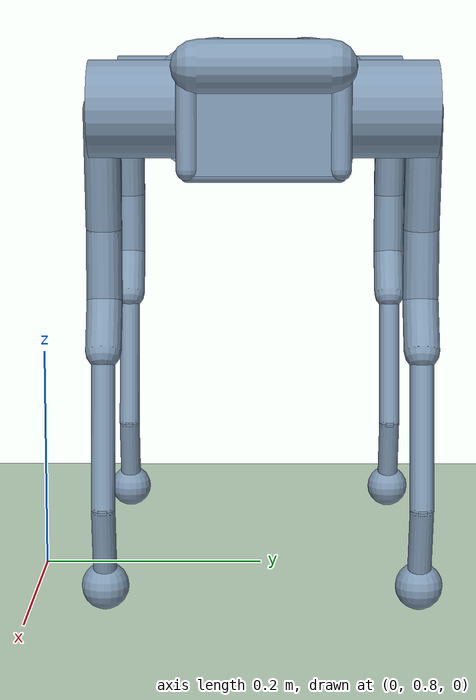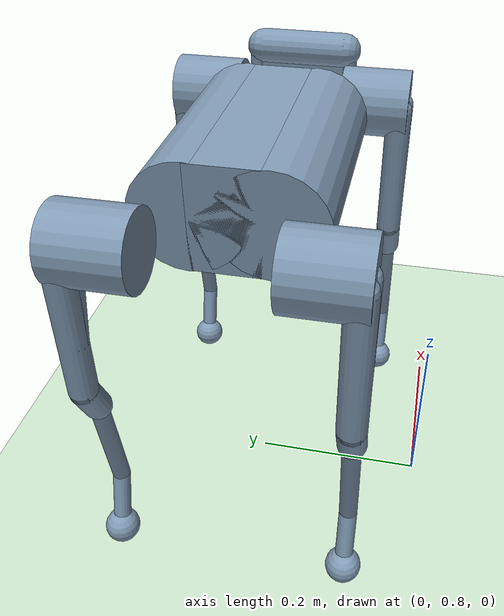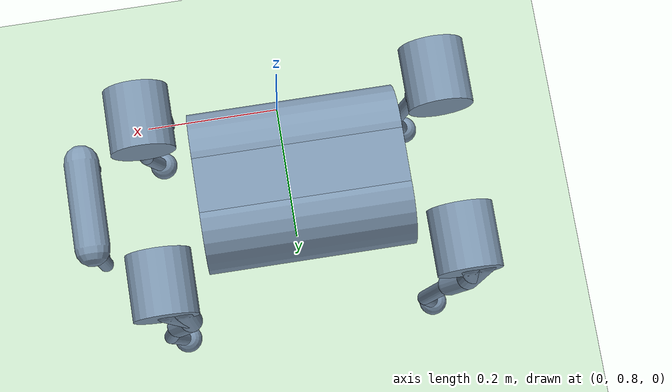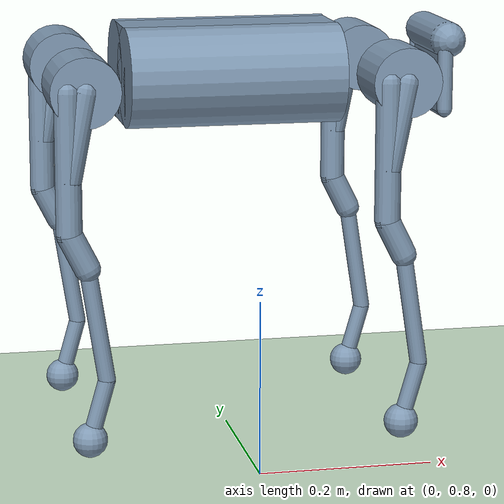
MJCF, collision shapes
<mujoco model="a1">
  <compiler angle="radian" meshdir="assets" texturedir="assets" autolimits="true"/>

  <option cone="elliptic" impratio="100" timestep="0.001"/><!-- timestep from loco-mujoo-->

  <default>
    <motor ctrllimited="true" ctrlrange="-1.0 1.0"/>
    <default class="a1">
      <geom friction="0.6" margin="0.001"/>
      <joint axis="0 1 0" damping="2" armature="0.01" frictionloss="0.2"/>
      <motor ctrlrange="-33.5 33.5" ctrllimited="true"/>
      <default class="abduction">
        <joint axis="1 0 0" range="-0.802851 0.802851" damping="1"/>
        <position ctrlrange="-0.802851 0.802851"/>
      </default>
      <default class="hip">
        <joint range="-1.0472 4.18879"/>
        <position ctrlrange="-1.0472 4.18879"/>
      </default>
      <default class="knee">
        <joint range="-2.69653 -0.916298"/>
        <position ctrlrange="-2.69653 -0.916298"/>
      </default>
      <default class="visual">
        <geom type="mesh" contype="0" conaffinity="0" group="0" material="dark"/>
      </default>
      <default class="collision">
        <geom group="1" type="capsule" rgba="0.5 0.6 0.7 0.2"/>
        <default class="hip_left">
          <geom size="0.04 0.04" quat="1 1 0 0" type="cylinder" pos="0 0.055 0"/>
        </default>
        <default class="hip_right">
          <geom size="0.04 0.04" quat="1 1 0 0" type="cylinder" pos="0 -0.055 0"/>
        </default>
        <default class="thigh1">
          <geom size="0.015" fromto="-0.02 0 0 -0.02 0 -0.16"/>
        </default>
        <default class="thigh2">
          <geom size="0.015" fromto="0 0 0 -0.02 0 -0.1"/>
        </default>
        <default class="thigh3">
          <geom size="0.015" fromto="-0.02 0 -0.16 0 0 -0.2"/>
        </default>
        <default class="calf1">
          <geom size="0.01" fromto="0 0 0 0.02 0 -0.13"/>
        </default>
        <default class="calf2">
          <geom size="0.01" fromto="0.02 0 -0.13 0 0 -0.2"/>
        </default>
        <default class="foot">
          <geom type="sphere" size="0.02" pos="0 0 -0.2" priority="1" solimp="0.015 1 0.031"
              condim="6" friction="0.8 0.02 0.01"/>
        </default>
      </default>
    </default>
  </default>

  <asset>
    <texture builtin="gradient" height="100" rgb1=".4 .5 .6" rgb2="0 0 0" type="skybox" width="100"/>
    <texture name="texplane" type="2d" builtin="checker" rgb1=".2 .3 .4" rgb2=".1 0.15 0.2" width="100" height="100"></texture>
    <material name="MatPlane" reflectance="0.5" texture="texplane" texrepeat="1 1" texuniform="true"></material>
    <material name="dark" specular="0" shininess="0.25" rgba="0.2 0.2 0.2 1"/>
    <texture type="2d" name="trunk_A1" file="trunk_A1.png"/>
    <material name="carbonfibre" texture="trunk_A1" specular="0" shininess="0.25"/>

    <mesh class="a1" file="calf.obj"/>
    <mesh class="a1" file="hip.obj"/>
    <mesh class="a1" file="thigh.obj"/>
    <mesh class="a1" file="thigh_mirror.obj"/>
    <mesh class="a1" file="trunk.obj"/>
  </asset>

  <worldbody>
    <geom name="floor" pos="0 0 0" size="500 500 0.125" type="plane" material="MatPlane" condim="3" group="2" rgba="0.8 0.9 0.8 1"></geom>
    <light cutoff="100" diffuse="1 1 1" dir="-0 0 -1.3" directional="true" exponent="1" pos="0 0 1.3" specular=".1 .1 .1" castshadow="false"/>

    <body name="trunk___1" pos="0 1 0.43" childclass="a1">
      <light name="spotlight___1" mode="trackcom" pos="0 -0.25 2"/>
      <camera name="track___1" mode="trackcom" pos="0 -3 1" xyaxes="1 0 0 0 0.3 1"/>
      <joint name="trunk_tx___1" type="slide" pos="0 0 0" axis="       1        0        0" limited="false" range="-500        500" ref="0" armature="0" damping="0" stiffness="0"></joint>
      <joint name="trunk_ty___1" type="slide" pos="0 0 0" axis="       0        1        0" limited="false" range="-500        500" ref="0" armature="0" damping="0" stiffness="0"></joint>
      <joint name="trunk_tz___1" type="slide" pos="0 0 0" axis="       0        0        1" limited="false" range="-500        500" ref="0" armature="0" damping="0" stiffness="0"></joint>
      <joint name="trunk_list___1" type="hinge" pos="0 0 0" axis="       1        0        0" limited="false" range=" -3.141592654   3.141592654" ref="0" armature="0" damping="0" stiffness="0"></joint>
      <joint name="trunk_tilt___1" type="hinge" pos="0 0 0" axis="       0        1        0" limited="false" range=" -3.141592654   3.141592654" ref="0" armature="0" damping="0" stiffness="0"></joint>
      <joint name="trunk_rotation___1" type="hinge" pos="0 0 0" axis="       0        0        1" limited="false" range=" -3.141592654   3.141592654" ref="0" armature="0" damping="0" stiffness="0"></joint>

      <inertial mass="4.713" pos="0 0.0041 -0.0005"
          fullinertia="0.0158533 0.0377999 0.0456542 -3.66e-05 -6.11e-05 -2.75e-05"/>

      <geom class="visual" mesh="trunk" material="carbonfibre"/>
      <geom class="collision" size="0.125 0.04 0.057" type="box"/>
      <geom class="collision" quat="1 0 1 0" pos="0 -0.04 0" size="0.058 0.125" type="cylinder"/>
      <geom class="collision" quat="1 0 1 0" pos="0 +0.04 0" size="0.058 0.125" type="cylinder"/>
      <geom class="collision" pos="0.25 0 0" size="0.005 0.06 0.05" type="box"/>
      <geom class="collision" pos="0.25 0.06 -0.01" size="0.009 0.035"/>
      <geom class="collision" pos="0.25 -0.06 -0.01" size="0.009 0.035"/>
      <geom class="collision" pos="0.25 0 -0.05" size="0.005 0.06" quat="1 1 0 0"/>
      <geom class="collision" pos="0.255 0 0.0355" size="0.021 0.052" quat="1 1 0 0"/>
      <body name="FR_hip___1" pos="0.183 -0.047 0">
        <inertial mass="0.696" pos="-0.003311 -0.000635 3.1e-05"
            quat="0.507528 0.506268 0.491507 0.494499"
            diaginertia="0.000807752 0.00055293 0.000468983"/>
        <joint class="abduction" name="FR_hip_joint___1"/>
        <geom class="visual" mesh="hip" quat="0 1 0 0"/>
        <geom class="hip_right"/>
        <body name="FR_thigh___1" pos="0 -0.08505 0">
          <inertial mass="1.013" pos="-0.003237 0.022327 -0.027326"
              quat="0.999125 -0.00256393 -0.0409531 -0.00806091"
              diaginertia="0.00555739 0.00513936 0.00133944"/>
          <joint class="hip" name="FR_thigh_joint___1"/>
          <geom class="visual" mesh="thigh_mirror"/>
          <geom class="thigh1"/>
          <geom class="thigh2"/>
          <geom class="thigh3"/>
          <body name="FR_calf___1" pos="0 0 -0.2">
            <inertial mass="0.226" pos="0.00472659 0 -0.131975"
                quat="0.706886 0.017653 0.017653 0.706886"
                diaginertia="0.00340344 0.00339393 3.54834e-05"/>
            <joint class="knee" name="FR_calf_joint___1"/>
            <geom class="visual" mesh="calf"/>
            <geom class="calf1"/>
            <geom class="calf2"/>
            <geom class="foot" name="FR_foot___1"/>
          </body>
        </body>
      </body>
      <body name="FL_hip___1" pos="0.183 0.047 0">
        <inertial mass="0.696" pos="-0.003311 0.000635 3.1e-05"
            quat="0.494499 0.491507 0.506268 0.507528"
            diaginertia="0.000807752 0.00055293 0.000468983"/>
        <joint class="abduction" name="FL_hip_joint___1"/>
        <geom class="visual" mesh="hip"/>
        <geom class="hip_left"/>
        <geom class="collision" size="0.04 0.04" pos="0 0.055 0" quat="1 1 0 0" type="cylinder"/>
        <body name="FL_thigh___1" pos="0 0.08505 0">
          <inertial mass="1.013" pos="-0.003237 -0.022327 -0.027326"
              quat="0.999125 0.00256393 -0.0409531 0.00806091"
              diaginertia="0.00555739 0.00513936 0.00133944"/>
          <joint class="hip" name="FL_thigh_joint___1"/>
          <geom class="visual" mesh="thigh"/>
          <geom class="thigh1"/>
          <geom class="thigh2"/>
          <geom class="thigh3"/>
          <body name="FL_calf___1" pos="0 0 -0.2">
            <inertial mass="0.226" pos="0.00472659 0 -0.131975"
                quat="0.706886 0.017653 0.017653 0.706886"
                diaginertia="0.00340344 0.00339393 3.54834e-05"/>
            <joint class="knee" name="FL_calf_joint___1"/>
            <geom class="visual" mesh="calf"/>
            <geom class="calf1"/>
            <geom class="calf2"/>
            <geom class="foot"  name="FL_foot___1"/>
          </body>
        </body>
      </body>
      <body name="RR_hip___1" pos="-0.183 -0.047 0">
        <inertial mass="0.696" pos="0.003311 -0.000635 3.1e-05"
            quat="0.491507 0.494499 0.507528 0.506268"
            diaginertia="0.000807752 0.00055293 0.000468983"/>
        <joint class="abduction" name="RR_hip_joint___1"/>
        <geom class="visual" quat="0 0 0 -1" mesh="hip"/>
        <geom class="hip_right"/>
        <body name="RR_thigh___1" pos="0 -0.08505 0">
          <inertial mass="1.013" pos="-0.003237 0.022327 -0.027326"
              quat="0.999125 -0.00256393 -0.0409531 -0.00806091"
              diaginertia="0.00555739 0.00513936 0.00133944"/>
          <joint class="hip" name="RR_thigh_joint___1"/>
          <geom class="visual" mesh="thigh_mirror"/>
          <geom class="thigh1"/>
          <geom class="thigh2"/>
          <geom class="thigh3"/>
          <body name="RR_calf___1" pos="0 0 -0.2">
            <inertial mass="0.226" pos="0.00472659 0 -0.131975"
                quat="0.706886 0.017653 0.017653 0.706886"
                diaginertia="0.00340344 0.00339393 3.54834e-05"/>
            <joint class="knee" name="RR_calf_joint___1"/>
            <geom class="visual" mesh="calf"/>
            <geom class="calf1"/>
            <geom class="calf2"/>
            <geom class="foot" name="RR_foot___1"/>
          </body>
        </body>
      </body>
      <body name="RL_hip___1" pos="-0.183 0.047 0">
        <inertial mass="0.696" pos="0.003311 0.000635 3.1e-05"
            quat="0.506268 0.507528 0.494499 0.491507"
            diaginertia="0.000807752 0.00055293 0.000468983"/>
        <joint class="abduction" name="RL_hip_joint___1"/>
        <geom class="visual" quat="0 0 1 0" mesh="hip"/>
        <geom class="hip_left"/>
        <body name="RL_thigh___1" pos="0 0.08505 0">
          <inertial mass="1.013" pos="-0.003237 -0.022327 -0.027326"
              quat="0.999125 0.00256393 -0.0409531 0.00806091"
              diaginertia="0.00555739 0.00513936 0.00133944"/>
          <joint class="hip" name="RL_thigh_joint___1"/>
          <geom class="visual" mesh="thigh"/>
          <geom class="thigh1"/>
          <geom class="thigh2"/>
          <geom class="thigh3"/>
          <body name="RL_calf___1" pos="0 0 -0.2">
            <inertial mass="0.226" pos="0.00472659 0 -0.131975"
                quat="0.706886 0.017653 0.017653 0.706886"
                diaginertia="0.00340344 0.00339393 3.54834e-05"/>
            <joint class="knee" name="RL_calf_joint___1"/>
            <geom class="visual" mesh="calf"/>
            <geom class="calf1"/>
            <geom class="calf2"/>
            <geom class="foot" name="RL_foot___1"/>
          </body>
        </body>
      </body>
    </body>

  </worldbody>

  <actuator>
    <motor name="FR_hip___1" gear="34" joint="FR_hip_joint___1"></motor>
    <motor name="FR_thigh___1" gear="34" joint="FR_thigh_joint___1"></motor>
    <motor name="FR_calf___1" gear="34" joint="FR_calf_joint___1"></motor>
    <motor name="FL_hip___1" gear="34" joint="FL_hip_joint___1"></motor>
    <motor name="FL_thigh___1" gear="34" joint="FL_thigh_joint___1"></motor>
    <motor name="FL_calf___1" gear="34" joint="FL_calf_joint___1"></motor>
    <motor name="RR_hip___1" gear="34" joint="RR_hip_joint___1"></motor>
    <motor name="RR_thigh___1" gear="34" joint="RR_thigh_joint___1"></motor>
    <motor name="RR_calf___1" gear="34" joint="RR_calf_joint___1"></motor>
    <motor name="RL_hip___1" gear="34" joint="RL_hip_joint___1"></motor>
    <motor name="RL_thigh___1" gear="34" joint="RL_thigh_joint___1"></motor>
    <motor name="RL_calf___1" gear="34" joint="RL_calf_joint___1"></motor>
  </actuator>

</mujoco>
